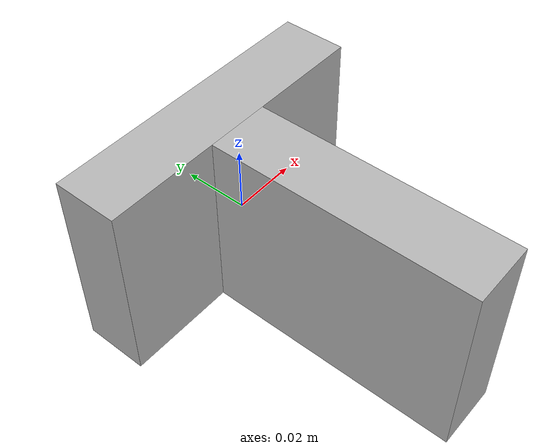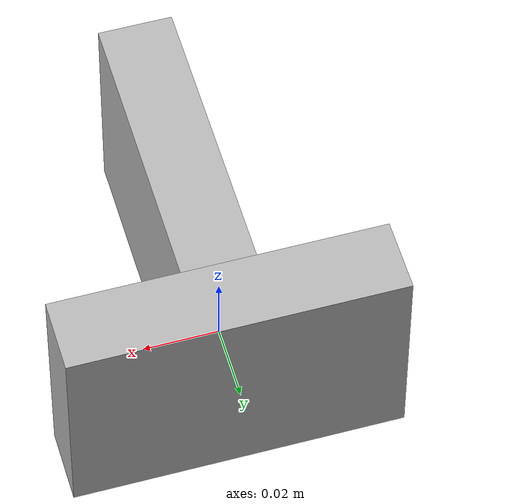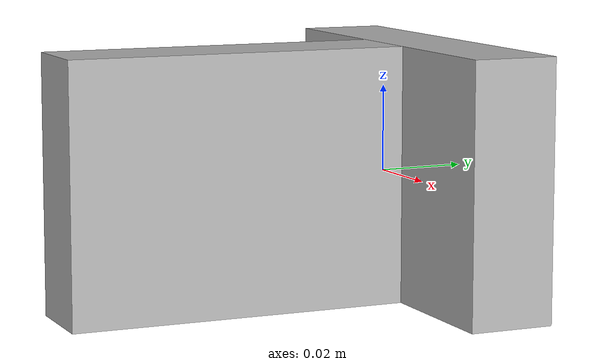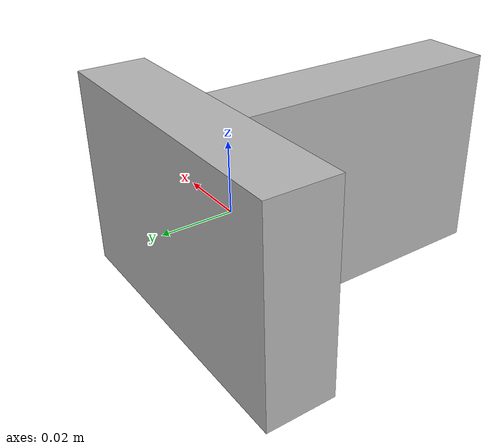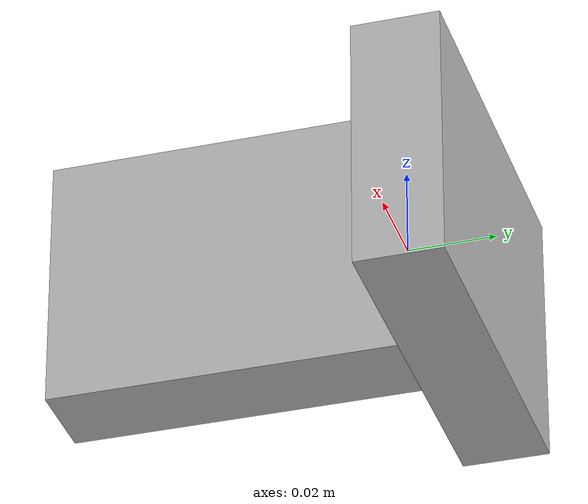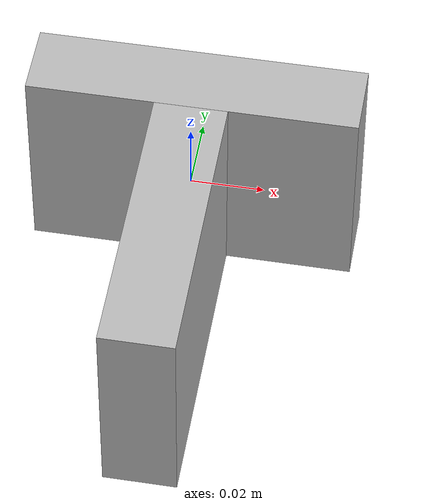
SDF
<?xml version="1.0"?>
<sdf version="1.7">
  <model name="push_t_oimscale_m005_control">
    <link name="vertical_link">
      <pose>0 0 0 0 0 0</pose>
      <inertial><pose>0 0.0099 0 0 0 0</pose><mass>0.0264252</mass>
        <inertia><ixx>0.0000086855</ixx><iyy>0.0000252650</iyy><izz>0.0000183060</izz><ixy>0</ixy><ixz>0</ixz><iyz>0</iyz></inertia></inertial>
      <visual name="crossbar_visual"><pose>0 0.0099 0 0 0 0</pose>
        <geometry><box><size>0.089 0.0198 0.0596</size></box></geometry></visual>
      <collision name="crossbar_collision"><pose>0 0.0099 0 0 0 0</pose>
        <geometry><box><size>0.089 0.0198 0.0596</size></box></geometry></collision>
      <collision name="corner_left"><pose>-0.0425 0.0099 -0.0288 0 0 0</pose><geometry><sphere><radius>0.001</radius></sphere></geometry></collision>
      <collision name="corner_right"><pose>0.0425 0.0099 -0.0288 0 0 0</pose><geometry><sphere><radius>0.001</radius></sphere></geometry></collision>
      <collision name="corner_stem"><pose>0 -0.0774 -0.0288 0 0 0</pose><geometry><sphere><radius>0.001</radius></sphere></geometry></collision>
    </link>
    <link name="horizontal_link">
      <pose>0 -0.0397 0 0 0 0</pose>
      <inertial><mass>0.0235748</mass>
        <inertia><ixx>0.0000193640</ixx><iyy>0.0000077485</iyy><izz>0.0000131555</izz><ixy>0</ixy><ixz>0</ixz><iyz>0</iyz></inertia></inertial>
      <visual name="stem_visual"><geometry><box><size>0.0198 0.0794 0.0596</size></box></geometry></visual>
      <collision name="stem_collision"><geometry><box><size>0.0198 0.0794 0.0596</size></box></geometry></collision>
    </link>
    <joint name="fixed_joint" type="fixed"><parent>vertical_link</parent><child>horizontal_link</child></joint>
  </model>
</sdf>
